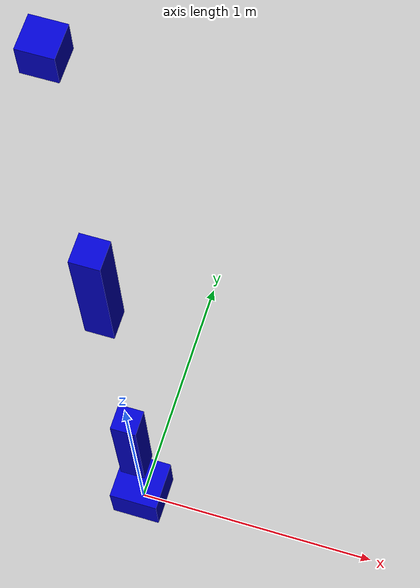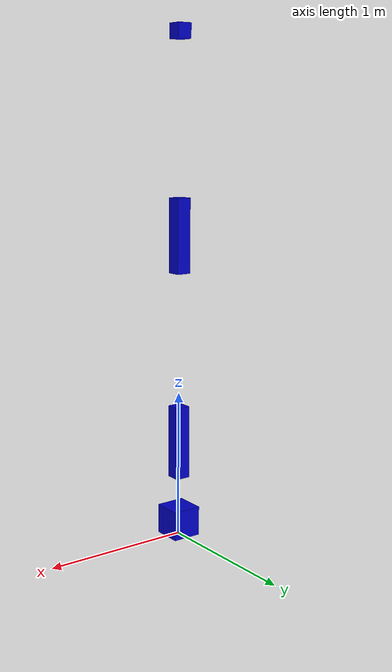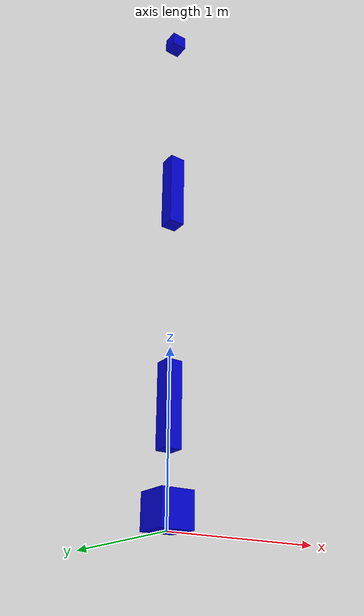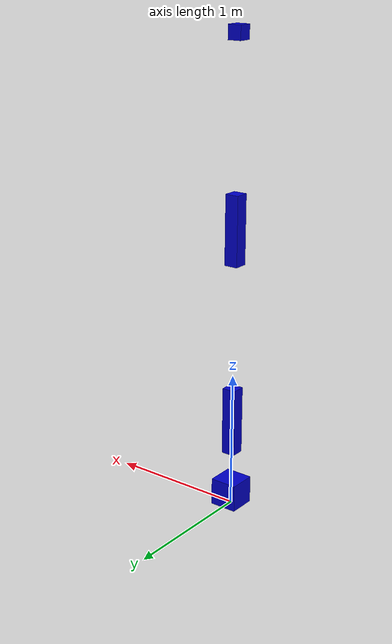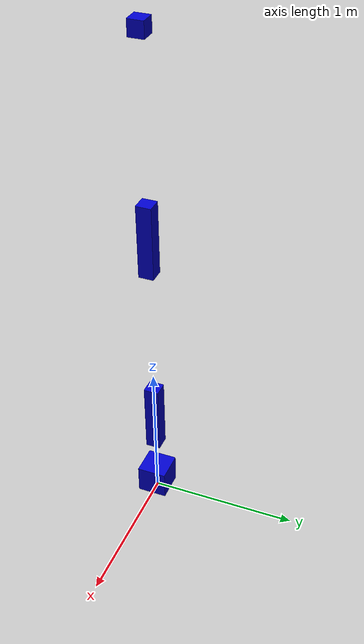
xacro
<?xml version="1.0"?>
<robot name="PatoBombelDaughter" xmlns:xacro="http://ros.org/wiki/xacro">

  <xacro:property name="pi" value="3.1415" />

  <material name="blue">
    <color rgba="0 0 0.8 1"/>
  </material>

  <material name="black">
    <color rgba="0 0 0 1"/>
  </material>

  <material name="white">
    <color rgba="1 1 1 1"/>
  </material>

	<xacro:macro name="segmentMacro" params="name rpy xyz size">
		<link name="${name}">
		  <visual>
		    <geometry>
          <box size="${size}"/>
		    </geometry>
		    <material name="blue"/>
		    <origin rpy="${rpy}" xyz="${xyz}"/>
		  </visual>
		</link>
  </xacro:macro>

	<xacro:macro name="jointMacro" params="parent child origin_xyz">
    <joint name="${parent}_to_${child}_joint_fixed" type="fixed">
      <parent link="${parent}"/>
      <child link="${child}"/>
      <origin xyz="${origin_xyz}"/>
    </joint>
  </xacro:macro>

  <xacro:segmentMacro name="base" rpy="0 0 0" xyz="0 0 0.1" size="0.2 0.2 0.2"/>

  <xacro:segmentMacro name="segment_1" rpy="0 0 0" xyz="0 0 ${0.45+0.01}" size="0.1 0.1 0.5"/>
	<xacro:jointMacro parent="base" child="segment_1" origin_xyz="0 0 0.2"/>

  <xacro:segmentMacro name="segment_2" rpy="0 0 0" xyz="0 0 ${0.95+0.02}" size="0.1 0.1 0.5"/>
	<xacro:jointMacro parent="segment_1" child="segment_2" origin_xyz="0 0 0.90"/>

  <xacro:segmentMacro name="gripper" rpy="0 0 0" xyz="0 0 ${1.25+0.03}" size="0.1 0.1 0.1"/>
	<xacro:jointMacro parent="segment_2" child="gripper" origin_xyz="0 0 1.0"/>

</robot>
